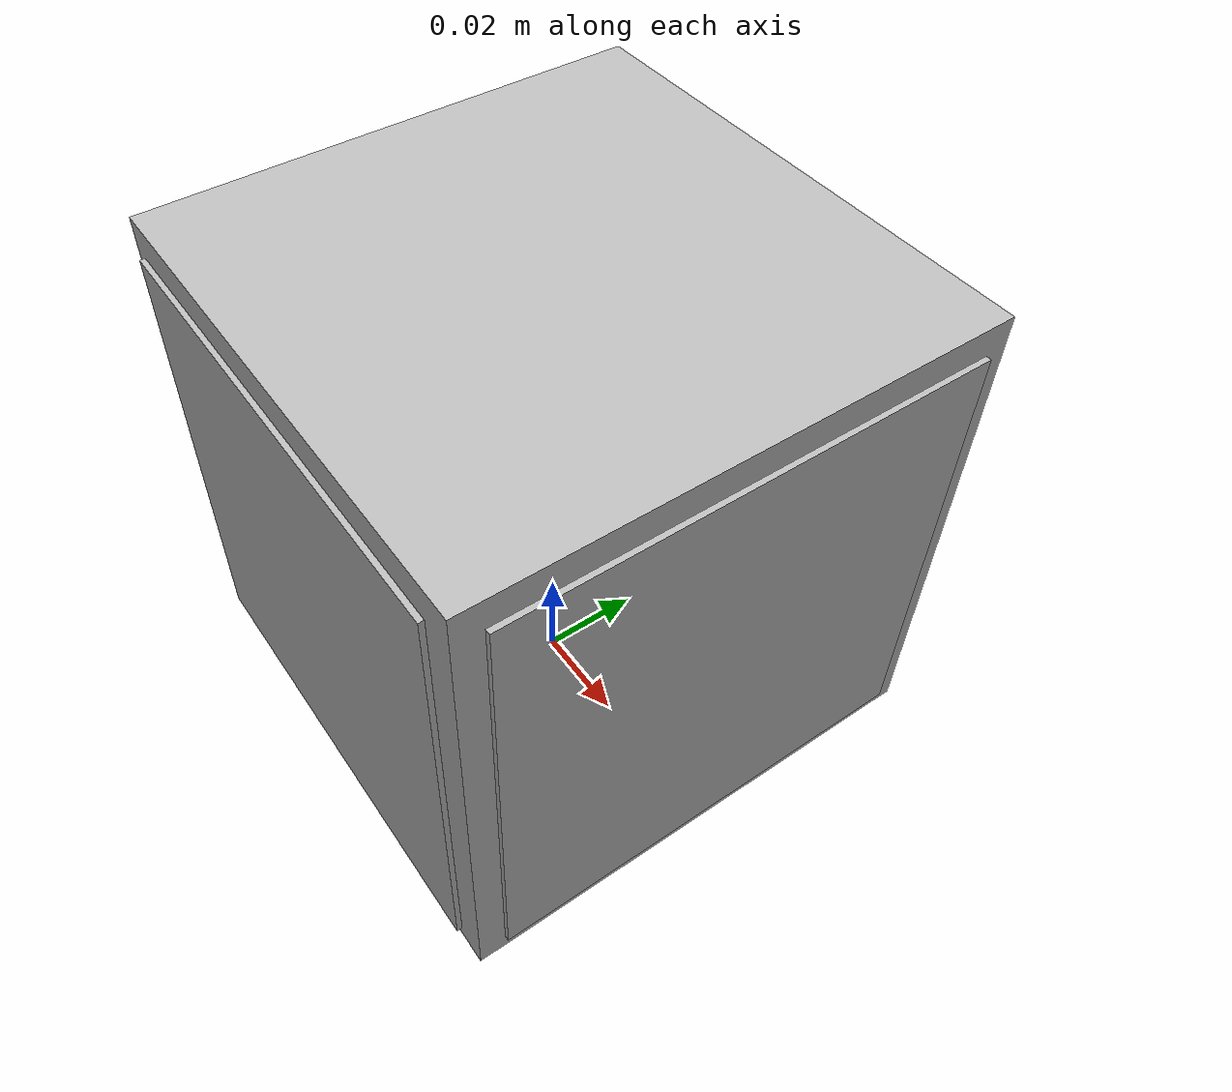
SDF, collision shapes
<?xml version="1.0" ?>
<sdf version="1.5">
  <model name="aruco_cube_1">
  <pose>0 0 0.05 0 0 0</pose>

 <link name="base">
        <collision name="collision_base">
          <geometry>
            <box>
              <size>0.1 0.1 0.1</size>
            </box>
          </geometry>
        </collision>
        <visual name="visual_base">
          <geometry>
            <box>
              <size>0.1 0.1 0.1</size>
            </box>
          </geometry>
        </visual>
    </link>

 <link name="artag_11">
      <pose>0.051 0 0 -1.57079633 0 -1.57079633</pose>
      <visual name="visual_artag_11">
        <geometry>
          <mesh>
            <uri>model://aruco_cube_1/meshes/artag_11.dae</uri>
          </mesh>
        </geometry>
      </visual>
      <collision name="collision_artag_11" >
        <geometry>
          <box>
            <size>0.09 0.09 0.001</size>
          </box>
        </geometry>
        <surface>
          <contact>
            <ode>
              <max_vel>0.1</max_vel>
              <min_depth>0.001</min_depth>
            </ode>
          </contact>
          <friction>
            <ode>
              <mu>1.0</mu>
              <mu2>1.0</mu2>
            </ode>
          </friction>
        </surface>
      </collision>
    </link>

<link name="artag_12">
      <pose>0 -0.051 0 -1.57079633 0 -3.14159265</pose>
      <visual name="visual_artag_12">
        <geometry>
          <mesh>
            <uri>model://aruco_cube_1/meshes/artag_12.dae</uri>
          </mesh>
        </geometry>
      </visual>
      <collision name="collision_artag_12" >
        <geometry>
          <box>
            <size>0.09 0.09 0.001</size>
          </box>
        </geometry>
        <surface>
          <contact>
            <ode>
              <max_vel>0.1</max_vel>
              <min_depth>0.001</min_depth>
            </ode>
          </contact>
          <friction>
            <ode>
              <mu>1.0</mu>
              <mu2>1.0</mu2>
            </ode>
          </friction>
        </surface>
      </collision>
    </link>

<link name="artag_13">
      <pose>-0.051 0 0 1.57079633 1.57079633 1.57079633</pose>
      <visual name="visual_artag_13">
        <geometry>
          <mesh>
            <uri>model://aruco_cube_1/meshes/artag_13.dae</uri>
          </mesh>
        </geometry>
      </visual>
      <collision name="collision_artag_13" >
        <geometry>
          <box>
            <size>0.09 0.09 0.001</size>
          </box>
        </geometry>
        <surface>
          <contact>
            <ode>
              <max_vel>0.1</max_vel>
              <min_depth>0.001</min_depth>
            </ode>
          </contact>
          <friction>
            <ode>
              <mu>1.0</mu>
              <mu2>1.0</mu2>
            </ode>
          </friction>
        </surface>
      </collision>
    </link>

<link name="artag_14">
      <pose>0 0.05 0  -1.57079633 0 0</pose>
      <visual name="visual_artag_14">
        <geometry>
          <mesh>
            <uri>model://aruco_cube_1/meshes/artag_14.dae</uri>
          </mesh>
        </geometry>
      </visual>
      <collision name="collision_artag_14" >
        <geometry>
          <box>
            <size>0.09 0.09 0.001</size>
          </box>
        </geometry>
        <surface>
          <contact>
            <ode>
              <max_vel>0.1</max_vel>
              <min_depth>0.001</min_depth>
            </ode>
          </contact>
          <friction>
            <ode>
              <mu>1.0</mu>
              <mu2>1.0</mu2>
            </ode>
          </friction>
        </surface>
      </collision>
    </link>

<joint name="base_to_tag11" type="fixed">
      <pose>0 0 0 0 0 0</pose>
      <parent>base</parent>
      <child>artag_11</child>
      <axis>
        <dynamics>
          <damping>1</damping>
          <friction>0</friction>
        </dynamics>
        <limit>
          <effort>1.0</effort>
        </limit>
        <xyz>1 0 0</xyz>
        <use_parent_model_frame>true</use_parent_model_frame>
      </axis>
    </joint>

<joint name="base_to_tag12" type="fixed">
      <pose>0 0 0 0 0 0</pose>
      <parent>base</parent>
      <child>artag_12</child>
      <axis>
        <dynamics>
          <damping>1</damping>
          <friction>0</friction>
        </dynamics>
        <limit>
          <effort>1.0</effort>
        </limit>
        <xyz>0 -1 0</xyz>
        <use_parent_model_frame>true</use_parent_model_frame>
      </axis>
    </joint>

<joint name="base_to_tag13" type="fixed">
      <pose>0 0 0 0 0 0</pose>
      <parent>base</parent>
      <child>artag_13</child>
      <axis>
        <dynamics>
          <damping>1</damping>
          <friction>0</friction>
        </dynamics>
        <limit>
          <effort>1.0</effort>
        </limit>
        <xyz>-1 0 0</xyz>
        <use_parent_model_frame>true</use_parent_model_frame>
      </axis>
    </joint>

<joint name="base_to_tag14" type="fixed">
      <pose>0 0 0 0 0 0</pose>
      <parent>base</parent>
      <child>artag_14</child>
      <axis>
        <dynamics>
          <damping>1</damping>
          <friction>0</friction>
        </dynamics>
        <limit>
          <effort>1.0</effort>
        </limit>
        <xyz>0 1 0</xyz>
        <use_parent_model_frame>true</use_parent_model_frame>
      </axis>
    </joint>

  </model>
</sdf>
